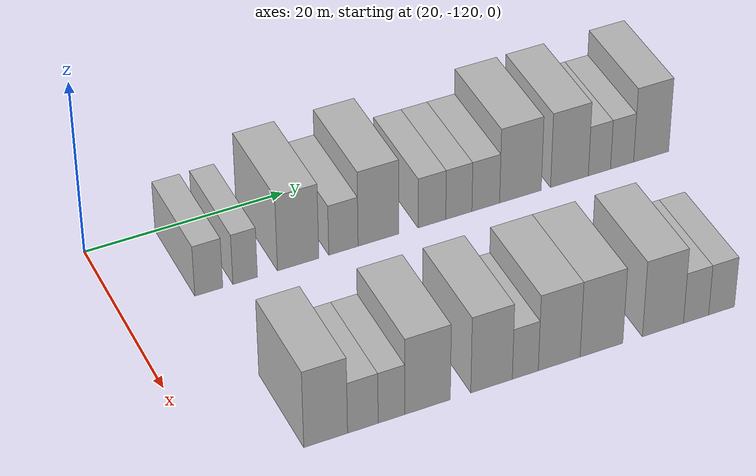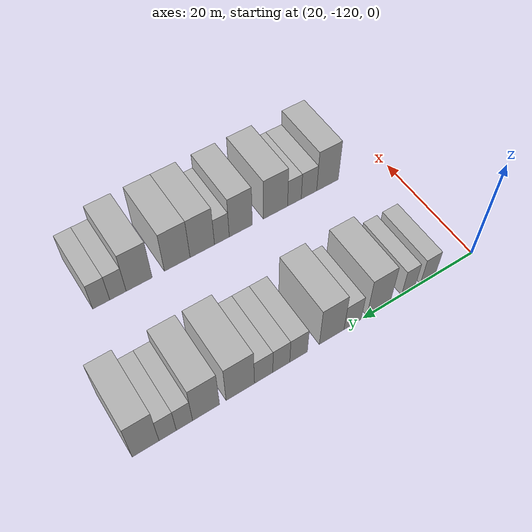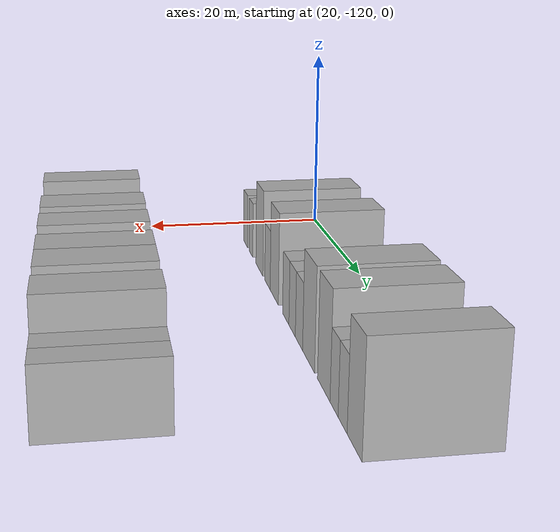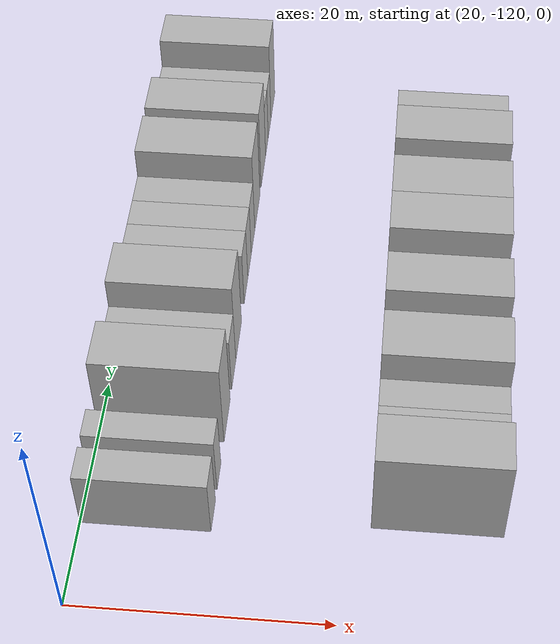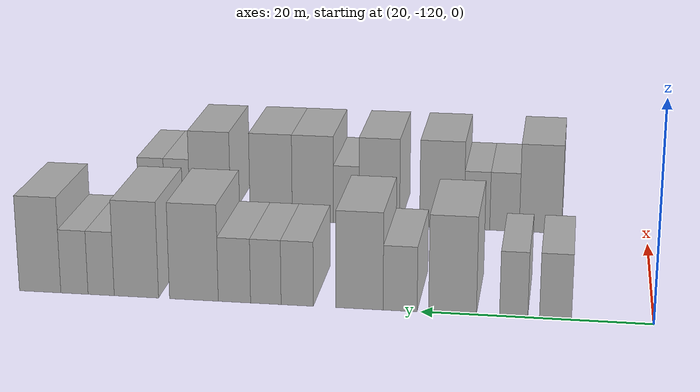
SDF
<sdf version="1.6">
 <world name="default">
  <model name="building_24">
   <static>1</static>
   <pose>25.0000 -111.6198 0 0.000000 0.000000 0.000000</pose>
   <link name="link">
    <pose>0 0 3.00 0 0 0</pose>
    <collision name="collision"><geometry><box><size>10.0000 2.7581 6.0000</size></box></geometry></collision>
    <visual name="visual">
     <cast_shadows>0</cast_shadows>
     <geometry><box><size>10.0000 2.7581 6.0000</size></box></geometry>
     <material>
      <script>
       <uri>model://HANNAS_wall/materials/scripts</uri>
       <uri>model://HANNAS_wall/materials/textures</uri>
       <name>vrc/HANNAS_wall</name>
      </script>
     </material>
    </visual>
   </link>
  </model>
  <model name="building_25">
   <static>1</static>
   <pose>25.0000 -108.0218 0 0.000000 0.000000 0.000000</pose>
   <link name="link">
    <pose>0 0 3.00 0 0 0</pose>
    <collision name="collision"><geometry><box><size>10.0000 2.4379 6.0000</size></box></geometry></collision>
    <visual name="visual">
     <cast_shadows>0</cast_shadows>
     <geometry><box><size>10.0000 2.4379 6.0000</size></box></geometry>
     <material>
      <script>
       <uri>model://HANNAS_wall/materials/scripts</uri>
       <uri>model://HANNAS_wall/materials/textures</uri>
       <name>vrc/HANNAS_wall</name>
      </script>
     </material>
    </visual>
   </link>
  </model>
  <model name="building_26">
   <static>1</static>
   <pose>25.0000 -102.7193 0 0.000000 0.000000 0.000000</pose>
   <link name="link">
    <pose>0 0 4.50 0 0 0</pose>
    <collision name="collision"><geometry><box><size>10.0000 4.1671 9.0000</size></box></geometry></collision>
    <visual name="visual">
     <cast_shadows>0</cast_shadows>
     <geometry><box><size>10.0000 4.1671 9.0000</size></box></geometry>
     <material>
      <script>
       <uri>model://HANNAS_wall/materials/scripts</uri>
       <uri>model://HANNAS_wall/materials/textures</uri>
       <name>vrc/HANNAS_wall</name>
      </script>
     </material>
    </visual>
   </link>
  </model>
  <model name="building_27">
   <static>1</static>
   <pose>25.0000 -98.1461 0 0.000000 0.000000 0.000000</pose>
   <link name="link">
    <pose>0 0 3.00 0 0 0</pose>
    <collision name="collision"><geometry><box><size>10.0000 2.9792 6.0000</size></box></geometry></collision>
    <visual name="visual">
     <cast_shadows>0</cast_shadows>
     <geometry><box><size>10.0000 2.9792 6.0000</size></box></geometry>
     <material>
      <script>
       <uri>model://HANNAS_wall/materials/scripts</uri>
       <uri>model://HANNAS_wall/materials/textures</uri>
       <name>vrc/HANNAS_wall</name>
      </script>
     </material>
    </visual>
   </link>
  </model>
  <model name="building_28">
   <static>1</static>
   <pose>25.0000 -94.5732 0 0.000000 0.000000 0.000000</pose>
   <link name="link">
    <pose>0 0 4.50 0 0 0</pose>
    <collision name="collision"><geometry><box><size>10.0000 4.1664 9.0000</size></box></geometry></collision>
    <visual name="visual">
     <cast_shadows>0</cast_shadows>
     <geometry><box><size>10.0000 4.1664 9.0000</size></box></geometry>
     <material>
      <script>
       <uri>model://HANNAS_wall/materials/scripts</uri>
       <uri>model://HANNAS_wall/materials/textures</uri>
       <name>vrc/HANNAS_wall</name>
      </script>
     </material>
    </visual>
   </link>
  </model>
  <model name="building_29">
   <static>1</static>
   <pose>25.0000 -89.0513 0 0.000000 0.000000 0.000000</pose>
   <link name="link">
    <pose>0 0 3.00 0 0 0</pose>
    <collision name="collision"><geometry><box><size>10.0000 2.8774 6.0000</size></box></geometry></collision>
    <visual name="visual">
     <cast_shadows>0</cast_shadows>
     <geometry><box><size>10.0000 2.8774 6.0000</size></box></geometry>
     <material>
      <script>
       <uri>model://HANNAS_wall/materials/scripts</uri>
       <uri>model://HANNAS_wall/materials/textures</uri>
       <name>vrc/HANNAS_wall</name>
      </script>
     </material>
    </visual>
   </link>
  </model>
  <model name="building_30">
   <static>1</static>
   <pose>25.0000 -86.2458 0 0.000000 0.000000 0.000000</pose>
   <link name="link">
    <pose>0 0 3.00 0 0 0</pose>
    <collision name="collision"><geometry><box><size>10.0000 2.7337 6.0000</size></box></geometry></collision>
    <visual name="visual">
     <cast_shadows>0</cast_shadows>
     <geometry><box><size>10.0000 2.7337 6.0000</size></box></geometry>
     <material>
      <script>
       <uri>model://HANNAS_wall/materials/scripts</uri>
       <uri>model://HANNAS_wall/materials/textures</uri>
       <name>vrc/HANNAS_wall</name>
      </script>
     </material>
    </visual>
   </link>
  </model>
  <model name="building_31">
   <static>1</static>
   <pose>25.0000 -83.4233 0 0.000000 0.000000 0.000000</pose>
   <link name="link">
    <pose>0 0 3.00 0 0 0</pose>
    <collision name="collision"><geometry><box><size>10.0000 2.9113 6.0000</size></box></geometry></collision>
    <visual name="visual">
     <cast_shadows>0</cast_shadows>
     <geometry><box><size>10.0000 2.9113 6.0000</size></box></geometry>
     <material>
      <script>
       <uri>model://HANNAS_wall/materials/scripts</uri>
       <uri>model://HANNAS_wall/materials/textures</uri>
       <name>vrc/HANNAS_wall</name>
      </script>
     </material>
    </visual>
   </link>
  </model>
  <model name="building_32">
   <static>1</static>
   <pose>25.0000 -79.7604 0 0.000000 0.000000 0.000000</pose>
   <link name="link">
    <pose>0 0 4.50 0 0 0</pose>
    <collision name="collision"><geometry><box><size>10.0000 4.4144 9.0000</size></box></geometry></collision>
    <visual name="visual">
     <cast_shadows>0</cast_shadows>
     <geometry><box><size>10.0000 4.4144 9.0000</size></box></geometry>
     <material>
      <script>
       <uri>model://HANNAS_wall/materials/scripts</uri>
       <uri>model://HANNAS_wall/materials/textures</uri>
       <name>vrc/HANNAS_wall</name>
      </script>
     </material>
    </visual>
   </link>
  </model>
  <model name="building_33">
   <static>1</static>
   <pose>25.0000 -74.5264 0 0.000000 0.000000 0.000000</pose>
   <link name="link">
    <pose>0 0 4.50 0 0 0</pose>
    <collision name="collision"><geometry><box><size>10.0000 4.0536 9.0000</size></box></geometry></collision>
    <visual name="visual">
     <cast_shadows>0</cast_shadows>
     <geometry><box><size>10.0000 4.0536 9.0000</size></box></geometry>
     <material>
      <script>
       <uri>model://HANNAS_wall/materials/scripts</uri>
       <uri>model://HANNAS_wall/materials/textures</uri>
       <name>vrc/HANNAS_wall</name>
      </script>
     </material>
    </visual>
   </link>
  </model>
  <model name="building_34">
   <static>1</static>
   <pose>25.0000 -71.2966 0 0.000000 0.000000 0.000000</pose>
   <link name="link">
    <pose>0 0 3.00 0 0 0</pose>
    <collision name="collision"><geometry><box><size>10.0000 2.4060 6.0000</size></box></geometry></collision>
    <visual name="visual">
     <cast_shadows>0</cast_shadows>
     <geometry><box><size>10.0000 2.4060 6.0000</size></box></geometry>
     <material>
      <script>
       <uri>model://HANNAS_wall/materials/scripts</uri>
       <uri>model://HANNAS_wall/materials/textures</uri>
       <name>vrc/HANNAS_wall</name>
      </script>
     </material>
    </visual>
   </link>
  </model>
  <model name="building_35">
   <static>1</static>
   <pose>25.0000 -68.8379 0 0.000000 0.000000 0.000000</pose>
   <link name="link">
    <pose>0 0 3.00 0 0 0</pose>
    <collision name="collision"><geometry><box><size>10.0000 2.5114 6.0000</size></box></geometry></collision>
    <visual name="visual">
     <cast_shadows>0</cast_shadows>
     <geometry><box><size>10.0000 2.5114 6.0000</size></box></geometry>
     <material>
      <script>
       <uri>model://HANNAS_wall/materials/scripts</uri>
       <uri>model://HANNAS_wall/materials/textures</uri>
       <name>vrc/HANNAS_wall</name>
      </script>
     </material>
    </visual>
   </link>
  </model>
  <model name="building_36">
   <static>1</static>
   <pose>25.0000 -65.6650 0 0.000000 0.000000 0.000000</pose>
   <link name="link">
    <pose>0 0 4.50 0 0 0</pose>
    <collision name="collision"><geometry><box><size>10.0000 3.8343 9.0000</size></box></geometry></collision>
    <visual name="visual">
     <cast_shadows>0</cast_shadows>
     <geometry><box><size>10.0000 3.8343 9.0000</size></box></geometry>
     <material>
      <script>
       <uri>model://HANNAS_wall/materials/scripts</uri>
       <uri>model://HANNAS_wall/materials/textures</uri>
       <name>vrc/HANNAS_wall</name>
      </script>
     </material>
    </visual>
   </link>
  </model>
  <model name="building_124">
   <static>1</static>
   <pose>47.0000 -109.6236 0 0.000000 0.000000 0.000000</pose>
   <link name="link">
    <pose>0 0 4.50 0 0 0</pose>
    <collision name="collision"><geometry><box><size>10.0000 4.1431 9.0000</size></box></geometry></collision>
    <visual name="visual">
     <cast_shadows>0</cast_shadows>
     <geometry><box><size>10.0000 4.1431 9.0000</size></box></geometry>
     <material>
      <script>
       <uri>model://HANNAS_wall/materials/scripts</uri>
       <uri>model://HANNAS_wall/materials/textures</uri>
       <name>vrc/HANNAS_wall</name>
      </script>
     </material>
    </visual>
   </link>
  </model>
  <model name="building_125">
   <static>1</static>
   <pose>47.0000 -106.0956 0 0.000000 0.000000 0.000000</pose>
   <link name="link">
    <pose>0 0 3.00 0 0 0</pose>
    <collision name="collision"><geometry><box><size>10.0000 2.9129 6.0000</size></box></geometry></collision>
    <visual name="visual">
     <cast_shadows>0</cast_shadows>
     <geometry><box><size>10.0000 2.9129 6.0000</size></box></geometry>
     <material>
      <script>
       <uri>model://HANNAS_wall/materials/scripts</uri>
       <uri>model://HANNAS_wall/materials/textures</uri>
       <name>vrc/HANNAS_wall</name>
      </script>
     </material>
    </visual>
   </link>
  </model>
  <model name="building_126">
   <static>1</static>
   <pose>47.0000 -103.3633 0 0.000000 0.000000 0.000000</pose>
   <link name="link">
    <pose>0 0 3.00 0 0 0</pose>
    <collision name="collision"><geometry><box><size>10.0000 2.5517 6.0000</size></box></geometry></collision>
    <visual name="visual">
     <cast_shadows>0</cast_shadows>
     <geometry><box><size>10.0000 2.5517 6.0000</size></box></geometry>
     <material>
      <script>
       <uri>model://HANNAS_wall/materials/scripts</uri>
       <uri>model://HANNAS_wall/materials/textures</uri>
       <name>vrc/HANNAS_wall</name>
      </script>
     </material>
    </visual>
   </link>
  </model>
  <model name="building_127">
   <static>1</static>
   <pose>47.0000 -99.8815 0 0.000000 0.000000 0.000000</pose>
   <link name="link">
    <pose>0 0 4.50 0 0 0</pose>
    <collision name="collision"><geometry><box><size>10.0000 4.4118 9.0000</size></box></geometry></collision>
    <visual name="visual">
     <cast_shadows>0</cast_shadows>
     <geometry><box><size>10.0000 4.4118 9.0000</size></box></geometry>
     <material>
      <script>
       <uri>model://HANNAS_wall/materials/scripts</uri>
       <uri>model://HANNAS_wall/materials/textures</uri>
       <name>vrc/HANNAS_wall</name>
      </script>
     </material>
    </visual>
   </link>
  </model>
  <model name="building_128">
   <static>1</static>
   <pose>47.0000 -93.6352 0 0.000000 0.000000 0.000000</pose>
   <link name="link">
    <pose>0 0 4.50 0 0 0</pose>
    <collision name="collision"><geometry><box><size>10.0000 4.0809 9.0000</size></box></geometry></collision>
    <visual name="visual">
     <cast_shadows>0</cast_shadows>
     <geometry><box><size>10.0000 4.0809 9.0000</size></box></geometry>
     <material>
      <script>
       <uri>model://HANNAS_wall/materials/scripts</uri>
       <uri>model://HANNAS_wall/materials/textures</uri>
       <name>vrc/HANNAS_wall</name>
      </script>
     </material>
    </visual>
   </link>
  </model>
  <model name="building_129">
   <static>1</static>
   <pose>47.0000 -90.3079 0 0.000000 0.000000 0.000000</pose>
   <link name="link">
    <pose>0 0 3.00 0 0 0</pose>
    <collision name="collision"><geometry><box><size>10.0000 2.5736 6.0000</size></box></geometry></collision>
    <visual name="visual">
     <cast_shadows>0</cast_shadows>
     <geometry><box><size>10.0000 2.5736 6.0000</size></box></geometry>
     <material>
      <script>
       <uri>model://HANNAS_wall/materials/scripts</uri>
       <uri>model://HANNAS_wall/materials/textures</uri>
       <name>vrc/HANNAS_wall</name>
      </script>
     </material>
    </visual>
   </link>
  </model>
  <model name="building_130">
   <static>1</static>
   <pose>47.0000 -86.9306 0 0.000000 0.000000 0.000000</pose>
   <link name="link">
    <pose>0 0 4.50 0 0 0</pose>
    <collision name="collision"><geometry><box><size>10.0000 4.1811 9.0000</size></box></geometry></collision>
    <visual name="visual">
     <cast_shadows>0</cast_shadows>
     <geometry><box><size>10.0000 4.1811 9.0000</size></box></geometry>
     <material>
      <script>
       <uri>model://HANNAS_wall/materials/scripts</uri>
       <uri>model://HANNAS_wall/materials/textures</uri>
       <name>vrc/HANNAS_wall</name>
      </script>
     </material>
    </visual>
   </link>
  </model>
  <model name="building_131">
   <static>1</static>
   <pose>47.0000 -82.6843 0 0.000000 0.000000 0.000000</pose>
   <link name="link">
    <pose>0 0 4.50 0 0 0</pose>
    <collision name="collision"><geometry><box><size>10.0000 4.3113 9.0000</size></box></geometry></collision>
    <visual name="visual">
     <cast_shadows>0</cast_shadows>
     <geometry><box><size>10.0000 4.3113 9.0000</size></box></geometry>
     <material>
      <script>
       <uri>model://HANNAS_wall/materials/scripts</uri>
       <uri>model://HANNAS_wall/materials/textures</uri>
       <name>vrc/HANNAS_wall</name>
      </script>
     </material>
    </visual>
   </link>
  </model>
  <model name="building_132">
   <static>1</static>
   <pose>47.0000 -76.4281 0 0.000000 0.000000 0.000000</pose>
   <link name="link">
    <pose>0 0 4.50 0 0 0</pose>
    <collision name="collision"><geometry><box><size>10.0000 4.2010 9.0000</size></box></geometry></collision>
    <visual name="visual">
     <cast_shadows>0</cast_shadows>
     <geometry><box><size>10.0000 4.2010 9.0000</size></box></geometry>
     <material>
      <script>
       <uri>model://HANNAS_wall/materials/scripts</uri>
       <uri>model://HANNAS_wall/materials/textures</uri>
       <name>vrc/HANNAS_wall</name>
      </script>
     </material>
    </visual>
   </link>
  </model>
  <model name="building_133">
   <static>1</static>
   <pose>47.0000 -73.0241 0 0.000000 0.000000 0.000000</pose>
   <link name="link">
    <pose>0 0 3.00 0 0 0</pose>
    <collision name="collision"><geometry><box><size>10.0000 2.6071 6.0000</size></box></geometry></collision>
    <visual name="visual">
     <cast_shadows>0</cast_shadows>
     <geometry><box><size>10.0000 2.6071 6.0000</size></box></geometry>
     <material>
      <script>
       <uri>model://HANNAS_wall/materials/scripts</uri>
       <uri>model://HANNAS_wall/materials/textures</uri>
       <name>vrc/HANNAS_wall</name>
      </script>
     </material>
    </visual>
   </link>
  </model>
  <model name="building_134">
   <static>1</static>
   <pose>47.0000 -70.3789 0 0.000000 0.000000 0.000000</pose>
   <link name="link">
    <pose>0 0 3.00 0 0 0</pose>
    <collision name="collision"><geometry><box><size>10.0000 2.6831 6.0000</size></box></geometry></collision>
    <visual name="visual">
     <cast_shadows>0</cast_shadows>
     <geometry><box><size>10.0000 2.6831 6.0000</size></box></geometry>
     <material>
      <script>
       <uri>model://HANNAS_wall/materials/scripts</uri>
       <uri>model://HANNAS_wall/materials/textures</uri>
       <name>vrc/HANNAS_wall</name>
      </script>
     </material>
    </visual>
   </link>
  </model>
 </world>
</sdf>
